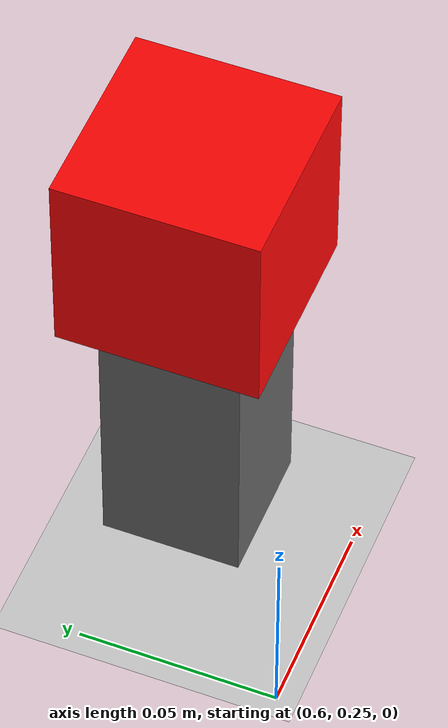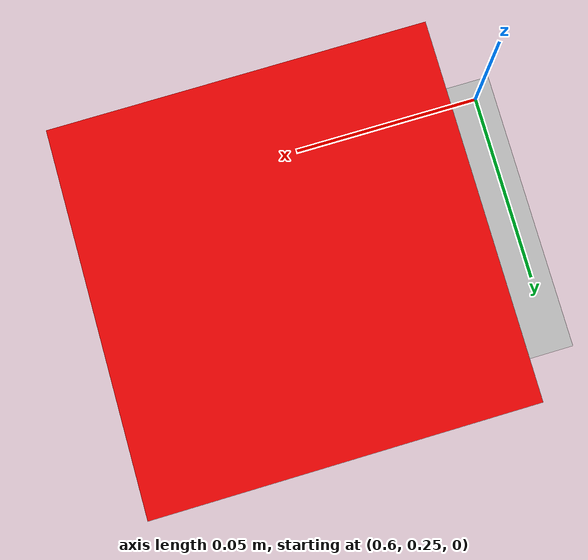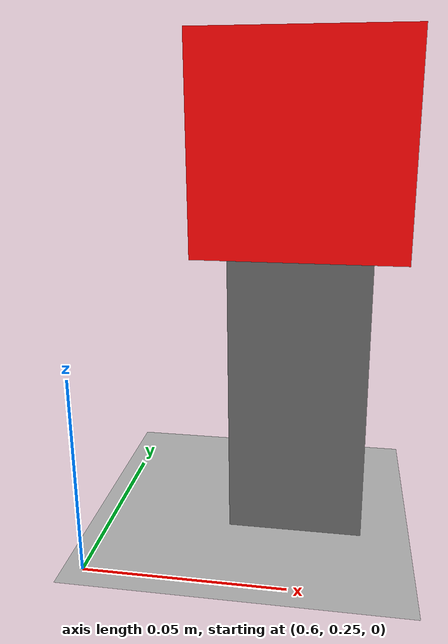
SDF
<?xml version="1.0"?>
<sdf version="1.11">
  <world name="piper">
    <physics name="1ms" type="ignored">
      <max_step_size>0.001</max_step_size>
      <real_time_factor>1.0</real_time_factor>
    </physics>

    <plugin filename="gz-sim-physics-system"
            name="gz::sim::systems::Physics"/>
    <plugin filename="gz-sim-user-commands-system"
            name="gz::sim::systems::UserCommands"/>
    <plugin filename="gz-sim-scene-broadcaster-system"
            name="gz::sim::systems::SceneBroadcaster"/>
    <plugin filename="gz-sim-contact-system"
            name="gz::sim::systems::Contact"/>
    <plugin filename="gz-sim-sensors-system"
            name="gz::sim::systems::Sensors">
      <render_engine>ogre2</render_engine>
    </plugin>

    <light name="sun" type="directional">
      <cast_shadows>true</cast_shadows>
      <pose>0 0 10 0 0 0</pose>
      <diffuse>0.8 0.8 0.8 1</diffuse>
      <specular>0.2 0.2 0.2 1</specular>
      <attenuation>
        <range>1000</range>
        <constant>0.9</constant>
        <linear>0.01</linear>
        <quadratic>0.001</quadratic>
      </attenuation>
      <direction>-0.5 0.1 -0.9</direction>
    </light>

    <model name="ground_plane">
      <static>true</static>
      <link name="link">
        <collision name="collision">
          <geometry>
            <plane>
              <normal>0 0 1</normal>
              <size>100 100</size>
            </plane>
          </geometry>
        </collision>
        <visual name="visual">
          <geometry>
            <plane>
              <normal>0 0 1</normal>
              <size>100 100</size>
            </plane>
          </geometry>
          <material>
            <ambient>0.8 0.8 0.8 1</ambient>
            <diffuse>0.8 0.8 0.8 1</diffuse>
            <specular>0.8 0.8 0.8 1</specular>
          </material>
        </visual>
      </link>
    </model>

    <!-- Narrow pedestal supports the box while leaving room for both fingers. -->
    <model name="red_target_stand">
      <static>true</static>
      <pose>0.65 0.29 0.0375 0 0 0</pose>
      <link name="stand_link">
        <collision name="stand_collision">
          <geometry><box><size>0.035 0.035 0.075</size></box></geometry>
        </collision>
        <visual name="stand_visual">
          <geometry><box><size>0.035 0.035 0.075</size></box></geometry>
          <material><ambient>0.4 0.4 0.4 1</ambient><diffuse>0.4 0.4 0.4 1</diffuse></material>
        </visual>
      </link>
    </model>

    <!-- Dynamic red target at the original camera height. -->
    <model name="red_target_box">
      <static>false</static>
      <pose>0.65 0.29 0.10 0 0 0</pose>
      <link name="box_link">
        <inertial>
          <mass>0.05</mass>
          <inertia>
            <ixx>0.0000208333</ixx>
            <iyy>0.0000208333</iyy>
            <izz>0.0000208333</izz>
            <ixy>0</ixy>
            <ixz>0</ixz>
            <iyz>0</iyz>
          </inertia>
        </inertial>
        <collision name="box_collision">
          <geometry><box><size>0.05 0.05 0.05</size></box></geometry>
          <surface><friction><ode><mu>2</mu><mu2>2</mu2></ode></friction></surface>
        </collision>
        <visual name="box_visual">
          <geometry><box><size>0.05 0.05 0.05</size></box></geometry>
          <material>
            <ambient>1.0 0.02 0.02 1.0</ambient>
            <diffuse>1.0 0.02 0.02 1.0</diffuse>
          </material>
        </visual>
      </link>
    </model>
  </world>
</sdf>
